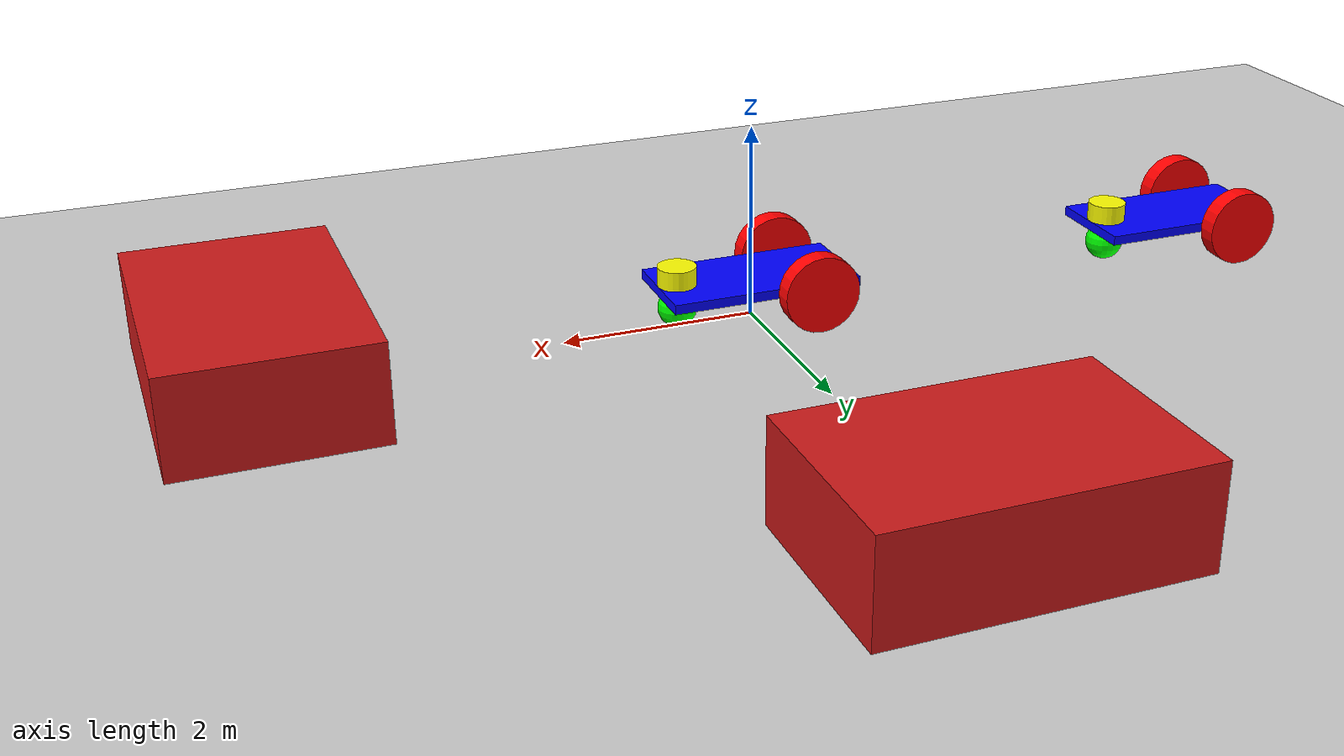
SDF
<?xml version="1.0" ?>
<sdf version="1.10">
    <world name="me_world">
        <physics name="1ms" type="ignored">
            <max_step_size>0.001</max_step_size>
            <real_time_factor>1.0</real_time_factor>
        </physics>

        <!--Plugins para la GUI y el mundo-->
        <plugin
            filename="gz-sim-physics-system"
            name="gz::sim::systems::Physics">
        </plugin>
        <plugin
            filename="gz-sim-user-commands-system"
            name="gz::sim::systems::UserCommands">
        </plugin>
        <plugin
            filename="gz-sim-scene-broadcaster-system"
            name="gz::sim::systems::SceneBroadcaster">
        </plugin>

        <!--IMU sensor to loaded-->
        <plugin
            filename="gz-sim-imu-system"
            name="gz::sim::systems::Imu">
        </plugin>

        <!--LiDAR sensor loaded-->
        <plugin
            filename="gz-sim-sensors-system"
            name="gz::sim::systems::Sensors">
            <render_engine>ogre2</render_engine>
        </plugin>

        <!--Caracteristicas del mundo-->

        <light type="directional" name="sun">
            <cast_shadows>true</cast_shadows>
            <pose>0 0 10 0 0 0</pose>
            <diffuse>0.8 0.8 0.8 1</diffuse>
            <specular>0.2 0.2 0.2 1</specular>
            <attenuation>
                <range>1000</range>
                <constant>0.9</constant>
                <linear>0.01</linear>
                <quadratic>0.001</quadratic>
            </attenuation>
            <direction>-0.5 0.1 -0.9</direction>
        </light>

        <model name="ground_plane">
            <static>true</static>
            <link name="link">
                <collision name="collision">
                <geometry>
                    <plane>
                    <normal>0 0 1</normal>
                    </plane>
                </geometry>
                </collision>
                <visual name="visual">
                <geometry>
                    <plane>
                    <normal>0 0 1</normal>
                    <size>100 100</size>
                    </plane>
                </geometry>
                <material>
                    <ambient>0.8 0.8 0.8 1</ambient>
                    <diffuse>0.8 0.8 0.8 1</diffuse>
                    <specular>0.8 0.8 0.8 1</specular>
                </material>
                </visual>
            </link>
        </model>

        <!-- Caja -->
        <model name="box_1">
          <static>true</static>
          <pose>5 0 0.5 0 0 0</pose>
          <link name="link_box_1">
            <collision name="collision">
              <geometry>
                <box>
                  <size>2 3 1</size>
                </box>
              </geometry>
            </collision>
            <visual name="visual">
              <geometry>
                <box>
                  <size>2 3 1</size>
                </box>
              </geometry>
              <material>
                <diffuse>0.8 0.1 0.1 1</diffuse>
              </material>
            </visual>
          </link>
        </model>

           <!-- Caja -->
        <model name="box_2">
          <static>true</static>
          <pose>0 5 0.5 0 0 0</pose>
          <link name="link_box_2">
            <collision name="collision">
              <geometry>
                <box>
                  <size>3 2 1</size>
                </box>
              </geometry>
            </collision>
            <visual name="visual">
              <geometry>
                <box>
                  <size>3 2 1</size>
                </box>
              </geometry>
              <material>
                <diffuse>0.8 0.1 0.1 1</diffuse>
              </material>
            </visual>
          </link>
        </model>

        <model name='mebot1' canonical_link='base_footprint'>
            <pose relative_to='world'>0 0 0 0 0 0</pose>

             <link name="base_footprint">
                <pose relative_to="__model__">0 0 0 0 0 0</pose>
            </link>

            <!--base_link-->
            <link name='base_link'>
                <pose relative_to="base_footprint">0 0 0.4 0 0 0</pose>
                <inertial> <!--inertial properties of the link mass, inertia matix-->
                    <mass>1.14395</mass>
                    <inertia>
                        <ixx>0.095329</ixx>
                        <ixy>0</ixy>
                        <ixz>0</ixz>
                        <iyy>0.381317</iyy>
                        <iyz>0</iyz>
                        <izz>0.476646</izz>
                    </inertia>
                </inertial>
                <visual name='visual'>
                    <geometry>
                        <box>
                            <size>2.0 1.0 0.1</size>
                        </box>
                    </geometry>
                    <!--color-->
                    <material>
                        <ambient>0.0 0.0 1.0 1</ambient>
                        <diffuse>0.0 0.0 1.0 1</diffuse>
                        <specular>0.0 0.0 1.0 1</specular>
                    </material>
                </visual>
                <collision name='collision'>
                    <geometry>
                        <box>
                            <size>2.0 1.0 0.1</size>
                        </box>
                    </geometry>
                </collision>

                <!--Sensor IMU definition-->
                <sensor name="imu_sensor" type="imu">
                    <always_on>1</always_on>
                    <update_rate>1</update_rate>
                    <visualize>true</visualize>
                    <topic>imu_1</topic>
                </sensor>
            </link>

            <joint name="base_to_base" type="fixed">
                <parent>base_footprint</parent>
                <child>base_link</child>
            </joint>

             <!--Lidar Link-->
            <link name='base_scan'>
                <pose relative_to="base_link">0.8 0 0.15 0 0 0</pose>
                <inertial>
                    <mass>1</mass>
                    <inertia>
                        <ixx>0.043333</ixx>
                        <ixy>0</ixy>
                        <ixz>0</ixz>
                        <iyy>0.043333</iyy>
                        <iyz>0</iyz>
                        <izz>0.08</izz>
                    </inertia>
                </inertial>
                <visual name='visual'>
                    <geometry>
                        <cylinder>
                            <radius>0.2</radius>
                            <length>0.2</length>
                        </cylinder>
                    </geometry>
                    <material>
                        <ambient>1.0 1.0 0.0 1</ambient>
                        <diffuse>1.0 1.0 0.0 1</diffuse>
                        <specular>1.0 1.0 0.0 1</specular>
                    </material>
                </visual>
                <collision name='collision'>
                    <geometry>
                        <cylinder>
                            <radius>0.2</radius>
                            <length>0.2</length>
                        </cylinder>
                    </geometry>
                </collision>

                <!--Sensor LiDAR definition-->
                <sensor name='gpu_lidar' type='gpu_lidar'>"
                    <pose relative_to='base_scan'>0 0 0 0 0 0</pose>
                    <topic>lidar_1</topic>
                    <update_rate>10</update_rate>
                    <ray>
                        <scan>
                            <horizontal>
                            <samples>640</samples>
                            <resolution>1</resolution>
                            <min_angle>-1.396263</min_angle>
                            <max_angle>1.396263</max_angle>
                            </horizontal>
                            <vertical>
                            <samples>1</samples>
                            <resolution>0.01</resolution>
                            <min_angle>0</min_angle>
                            <max_angle>0</max_angle>
                            </vertical>
                        </scan>
                    <range>
                        <min>0.08</min>
                        <max>10.0</max>
                        <resolution>0.01</resolution>
                    </range>
                    </ray>
                    <always_on>1</always_on>
                    <visualize>true</visualize>
                </sensor>
            </link>

            <!--left wheel-->
            <link name='wheel_left_link'>
                <pose relative_to="base_link">-0.5 0.6 0 -1.5707 0 0</pose>
                <inertial>
                    <mass>1</mass>
                    <inertia>
                        <ixx>0.043333</ixx>
                        <ixy>0</ixy>
                        <ixz>0</ixz>
                        <iyy>0.043333</iyy>
                        <iyz>0</iyz>
                        <izz>0.08</izz>
                    </inertia>
                </inertial>
                <visual name='visual'>
                    <geometry>
                        <cylinder>
                            <radius>0.4</radius>
                            <length>0.2</length>
                        </cylinder>
                    </geometry>
                    <material>
                        <ambient>1.0 0.0 0.0 1</ambient>
                        <diffuse>1.0 0.0 0.0 1</diffuse>
                        <specular>1.0 0.0 0.0 1</specular>
                    </material>
                </visual>
                <collision name='collision'>
                    <geometry>
                        <cylinder>
                            <radius>0.4</radius>
                            <length>0.2</length>
                        </cylinder>
                    </geometry>
                </collision>
            </link>

            <!--right wheel-->
             <link name='wheel_right_link'>
                <pose relative_to="base_link">-0.5 -0.6 0 -1.5707 0 0</pose>
                <inertial>
                    <mass>1</mass>
                    <inertia>
                        <ixx>0.043333</ixx>
                        <ixy>0</ixy>
                        <ixz>0</ixz>
                        <iyy>0.043333</iyy>
                        <iyz>0</iyz>
                        <izz>0.08</izz>
                    </inertia>
                </inertial>
                <visual name='visual'>
                    <geometry>
                        <cylinder>
                            <radius>0.4</radius>
                            <length>0.2</length>
                        </cylinder>
                    </geometry>
                    <material>
                        <ambient>1.0 0.0 0.0 1</ambient>
                        <diffuse>1.0 0.0 0.0 1</diffuse>
                        <specular>1.0 0.0 0.0 1</specular>
                    </material>
                </visual>
                <collision name='collision'>
                    <geometry>
                        <cylinder>
                            <radius>0.4</radius>
                            <length>0.2</length>
                        </cylinder>
                    </geometry>
                </collision>
            </link>

            <!--Creamos un frame en el chasis para la rueda loca
            este frame se coloca (pose) relativo al frame del objeto al que está
            adherido-->
            <frame name="caster_frame" attached_to='base_link'>
                <pose>0.8 0 -0.2 0 0 0</pose>
            </frame>

            <!--caster wheel-->
            <link name='caster_link'>
                <pose relative_to='caster_frame'/>
                <inertial>
                    <mass>0.01</mass>
                    <inertia>
                        <ixx>0.016</ixx>
                        <ixy>0</ixy>
                        <ixz>0</ixz>
                        <iyy>0.016</iyy>
                        <iyz>0</iyz>
                        <izz>0.016</izz>
                    </inertia>
                </inertial>
                <visual name='visual'>
                    <geometry>
                        <sphere>
                            <radius>0.2</radius>
                        </sphere>
                    </geometry>
                    <material>
                        <ambient>0.0 1 0.0 1</ambient>
                        <diffuse>0.0 1 0.0 1</diffuse>
                        <specular>0.0 1 0.0 1</specular>
                    </material>
                </visual>
                <collision name='collision'>
                    <geometry>
                        <sphere>
                            <radius>0.2</radius>
                        </sphere>
                    </geometry>
                </collision>
            </link>

            <!--Joint LiDAR Link-->
            <joint name='scan_joint' type='fixed'>
                <pose relative_to='base_scan'/>

                <parent>base_link</parent>
                <child>base_scan</child>
            </joint>

            <!--Joint Left wheel-->
            <joint name='mebot1/wheel_left_joint' type='revolute'>
                <pose relative_to='wheel_left_link'/>

                <parent>base_link</parent>
                <child>wheel_left_link</child>

                <axis>
                    <xyz expressed_in='__model__'>0 1 0</xyz> <!--can be descired to any frame or even arbitrary frames-->
                    <limit>
                        <lower>-1.79769e+308</lower>    <!--negative infinity-->
                        <upper>1.79769e+308</upper>     <!--positive infinity-->
                    </limit>
                </axis>
            </joint>

            <!--Joint Right wheel-->
            <joint name='mebot1/wheel_right_joint' type='revolute'>
                <pose relative_to='wheel_right_link'/>
                <parent>base_link</parent>
                <child>wheel_right_link</child>
                <axis>
                    <xyz expressed_in='__model__'>0 1 0</xyz>
                    <limit>
                        <lower>-1.79769e+308</lower>    <!--negative infinity-->
                        <upper>1.79769e+308</upper>     <!--positive infinity-->
                    </limit>
                </axis>
            </joint>

            <!--Joint Caster wheel-->
            <joint name='caster_joint' type='ball'>
                <parent>base_link</parent>
                <child>caster_link</child>
            </joint>

             <!-- Plugin para ros2_control -->
            <ros2_control name="GazeboSimSystem" type="system">
              <hardware>
                <plugin>gz_ros2_control/GazeboSimSystem</plugin>
              </hardware>
              <joint name="mebot1/wheel_left_joint">
                <command_interface name="velocity"/>
                <state_interface name="position"/>
                <state_interface name="velocity"/>
              </joint>
              <joint name="mebot1/wheel_right_joint">
                <command_interface name="velocity"/>
                <state_interface name="position"/>
                <state_interface name="velocity"/>
              </joint>
            </ros2_control>

            <plugin filename="libgz_ros2_control-system.so" name="gz_ros2_control::GazeboSimROS2ControlPlugin">
                <parameters>/home/rinese/robot_ws/src/me_robot_pkg/config/ros2_controller_1.yaml</parameters>
                <robot_param>robot_description</robot_param>
                <robot_param_node>robot_state_publisher_1</robot_param_node>
                <ros>
                  <namespace>mebot1</namespace>
                  <param name="use_sim_time">true</param>
                </ros>
            </plugin>
        </model>

        <model name='mebot2' canonical_link='base_footprint'>
            <pose relative_to='world'>-5 0 0 0 0 0</pose>

             <link name="base_footprint">
                <pose relative_to="__model__">0 0 0 0 0 0</pose>
            </link>

            <!--base_link-->
            <link name='base_link'>
                <pose relative_to="base_footprint">0 0 0.4 0 0 0</pose>
                <inertial> <!--inertial properties of the link mass, inertia matix-->
                    <mass>1.14395</mass>
                    <inertia>
                        <ixx>0.095329</ixx>
                        <ixy>0</ixy>
                        <ixz>0</ixz>
                        <iyy>0.381317</iyy>
                        <iyz>0</iyz>
                        <izz>0.476646</izz>
                    </inertia>
                </inertial>
                <visual name='visual'>
                    <geometry>
                        <box>
                            <size>2.0 1.0 0.1</size>
                        </box>
                    </geometry>
                    <!--color-->
                    <material>
                        <ambient>0.0 0.0 1.0 1</ambient>
                        <diffuse>0.0 0.0 1.0 1</diffuse>
                        <specular>0.0 0.0 1.0 1</specular>
                    </material>
                </visual>
                <collision name='collision'>
                    <geometry>
                        <box>
                            <size>2.0 1.0 0.1</size>
                        </box>
                    </geometry>
                </collision>

                <!--Sensor IMU definition-->
                <sensor name="imu_sensor" type="imu">
                    <always_on>1</always_on>
                    <update_rate>1</update_rate>
                    <visualize>true</visualize>
                    <topic>imu_2</topic>
                </sensor>
            </link>

            <joint name="base_to_base" type="fixed">
                <parent>base_footprint</parent>
                <child>base_link</child>
            </joint>

             <!--Lidar Link-->
            <link name='base_scan'>
                <pose relative_to="base_link">0.8 0 0.15 0 0 0</pose>
                <inertial>
                    <mass>1</mass>
                    <inertia>
                        <ixx>0.043333</ixx>
                        <ixy>0</ixy>
                        <ixz>0</ixz>
                        <iyy>0.043333</iyy>
                        <iyz>0</iyz>
                        <izz>0.08</izz>
                    </inertia>
                </inertial>
                <visual name='visual'>
                    <geometry>
                        <cylinder>
                            <radius>0.2</radius>
                            <length>0.2</length>
                        </cylinder>
                    </geometry>
                    <material>
                        <ambient>1.0 1.0 0.0 1</ambient>
                        <diffuse>1.0 1.0 0.0 1</diffuse>
                        <specular>1.0 1.0 0.0 1</specular>
                    </material>
                </visual>
                <collision name='collision'>
                    <geometry>
                        <cylinder>
                            <radius>0.2</radius>
                            <length>0.2</length>
                        </cylinder>
                    </geometry>
                </collision>

                <!--Sensor LiDAR definition-->
                <sensor name='gpu_lidar' type='gpu_lidar'>"
                    <pose relative_to='base_scan'>0 0 0 0 0 0</pose>
                    <topic>lidar_2</topic>
                    <update_rate>10</update_rate>
                    <ray>
                        <scan>
                            <horizontal>
                            <samples>640</samples>
                            <resolution>1</resolution>
                            <min_angle>-1.396263</min_angle>
                            <max_angle>1.396263</max_angle>
                            </horizontal>
                            <vertical>
                            <samples>1</samples>
                            <resolution>0.01</resolution>
                            <min_angle>0</min_angle>
                            <max_angle>0</max_angle>
                            </vertical>
                        </scan>
                    <range>
                        <min>0.08</min>
                        <max>10.0</max>
                        <resolution>0.01</resolution>
                    </range>
                    </ray>
                    <always_on>1</always_on>
                    <visualize>true</visualize>
                </sensor>
            </link>

            <!--left wheel-->
            <link name='wheel_left_link'>
                <pose relative_to="base_link">-0.5 0.6 0 -1.5707 0 0</pose>
                <inertial>
                    <mass>1</mass>
                    <inertia>
                        <ixx>0.043333</ixx>
                        <ixy>0</ixy>
                        <ixz>0</ixz>
                        <iyy>0.043333</iyy>
                        <iyz>0</iyz>
                        <izz>0.08</izz>
                    </inertia>
                </inertial>
                <visual name='visual'>
                    <geometry>
                        <cylinder>
                            <radius>0.4</radius>
                            <length>0.2</length>
                        </cylinder>
                    </geometry>
                    <material>
                        <ambient>1.0 0.0 0.0 1</ambient>
                        <diffuse>1.0 0.0 0.0 1</diffuse>
                        <specular>1.0 0.0 0.0 1</specular>
                    </material>
                </visual>
                <collision name='collision'>
                    <geometry>
                        <cylinder>
                            <radius>0.4</radius>
                            <length>0.2</length>
                        </cylinder>
                    </geometry>
                </collision>
            </link>

            <!--right wheel-->
             <link name='wheel_right_link'>
                <pose relative_to="base_link">-0.5 -0.6 0 -1.5707 0 0</pose>
                <inertial>
                    <mass>1</mass>
                    <inertia>
                        <ixx>0.043333</ixx>
                        <ixy>0</ixy>
                        <ixz>0</ixz>
                        <iyy>0.043333</iyy>
                        <iyz>0</iyz>
                        <izz>0.08</izz>
                    </inertia>
                </inertial>
                <visual name='visual'>
                    <geometry>
                        <cylinder>
                            <radius>0.4</radius>
                            <length>0.2</length>
                        </cylinder>
                    </geometry>
                    <material>
                        <ambient>1.0 0.0 0.0 1</ambient>
                        <diffuse>1.0 0.0 0.0 1</diffuse>
                        <specular>1.0 0.0 0.0 1</specular>
                    </material>
                </visual>
                <collision name='collision'>
                    <geometry>
                        <cylinder>
                            <radius>0.4</radius>
                            <length>0.2</length>
                        </cylinder>
                    </geometry>
                </collision>
            </link>

            <!--Creamos un frame en el chasis para la rueda loca
            este frame se coloca (pose) relativo al frame del objeto al que está
            adherido-->
            <frame name="caster_frame" attached_to='base_link'>
                <pose>0.8 0 -0.2 0 0 0</pose>
            </frame>

            <!--caster wheel-->
            <link name='caster_link'>
                <pose relative_to='caster_frame'/>
                <inertial>
                    <mass>0.01</mass>
                    <inertia>
                        <ixx>0.016</ixx>
                        <ixy>0</ixy>
                        <ixz>0</ixz>
                        <iyy>0.016</iyy>
                        <iyz>0</iyz>
                        <izz>0.016</izz>
                    </inertia>
                </inertial>
                <visual name='visual'>
                    <geometry>
                        <sphere>
                            <radius>0.2</radius>
                        </sphere>
                    </geometry>
                    <material>
                        <ambient>0.0 1 0.0 1</ambient>
                        <diffuse>0.0 1 0.0 1</diffuse>
                        <specular>0.0 1 0.0 1</specular>
                    </material>
                </visual>
                <collision name='collision'>
                    <geometry>
                        <sphere>
                            <radius>0.2</radius>
                        </sphere>
                    </geometry>
                </collision>
            </link>

            <!--Joint LiDAR Link-->
            <joint name='scan_joint' type='fixed'>
                <pose relative_to='base_scan'/>

                <parent>base_link</parent>
                <child>base_scan</child>
            </joint>

            <!--Joint Left wheel-->
            <joint name='mebot2/wheel_left_joint' type='revolute'>
                <pose relative_to='wheel_left_link'/>

                <parent>base_link</parent>
                <child>wheel_left_link</child>

                <axis>
                    <xyz expressed_in='__model__'>0 1 0</xyz> <!--can be descired to any frame or even arbitrary frames-->
                    <limit>
                        <lower>-1.79769e+308</lower>    <!--negative infinity-->
                        <upper>1.79769e+308</upper>     <!--positive infinity-->
                    </limit>
                </axis>
            </joint>

            <!--Joint Right wheel-->
            <joint name='mebot2/wheel_right_joint' type='revolute'>
                <pose relative_to='wheel_right_link'/>
                <parent>base_link</parent>
                <child>wheel_right_link</child>
                <axis>
                    <xyz expressed_in='__model__'>0 1 0</xyz>
                    <limit>
                        <lower>-1.79769e+308</lower>    <!--negative infinity-->
                        <upper>1.79769e+308</upper>     <!--positive infinity-->
                    </limit>
                </axis>
            </joint>

            <!--Joint Caster wheel-->
            <joint name='caster_joint' type='ball'>
                <parent>base_link</parent>
                <child>caster_link</child>
            </joint>

             <!-- Plugin para ros2_control -->
            <ros2_control name="GazeboSimSystem" type="system">
              <hardware>
                <plugin>gz_ros2_control/GazeboSimSystem</plugin>
              </hardware>
              <joint name="mebot2/wheel_left_joint">
                <command_interface name="velocity"/>
                <state_interface name="position"/>
                <state_interface name="velocity"/>
              </joint>
              <joint name="mebot2/wheel_right_joint">
                <command_interface name="velocity"/>
                <state_interface name="position"/>
                <state_interface name="velocity"/>
              </joint>
            </ros2_control>

            <plugin filename="libgz_ros2_control-system.so" name="gz_ros2_control::GazeboSimROS2ControlPlugin">
                <parameters>/home/rinese/robot_ws/src/me_robot_pkg/config/ros2_controller_2.yaml</parameters>
                <robot_param>robot_description</robot_param>
                <robot_param_node>robot_state_publisher_2</robot_param_node>
                <ros>
                  <namespace>mebot2</namespace>
                  <param name="use_sim_time">true</param>
                </ros>
            </plugin>
        </model>

    </world>
</sdf>
